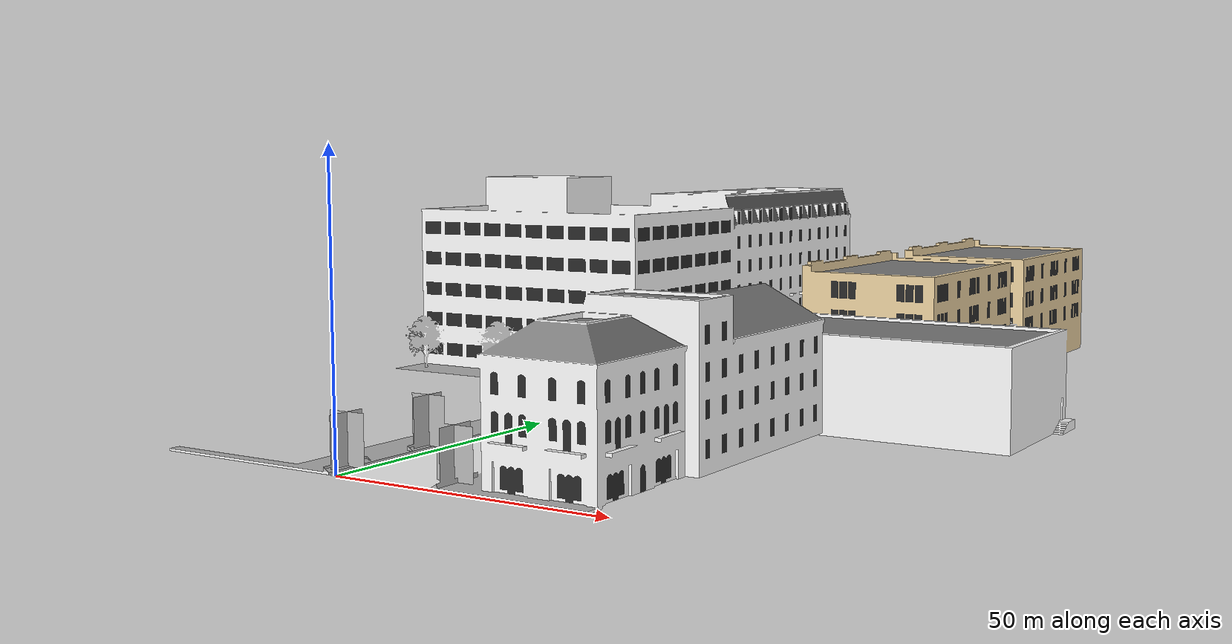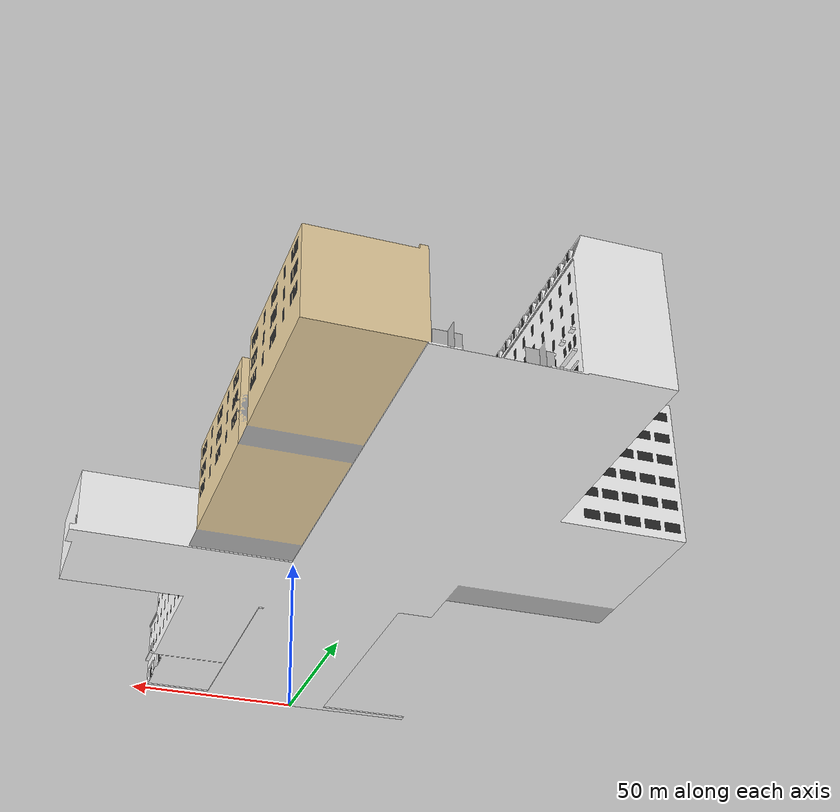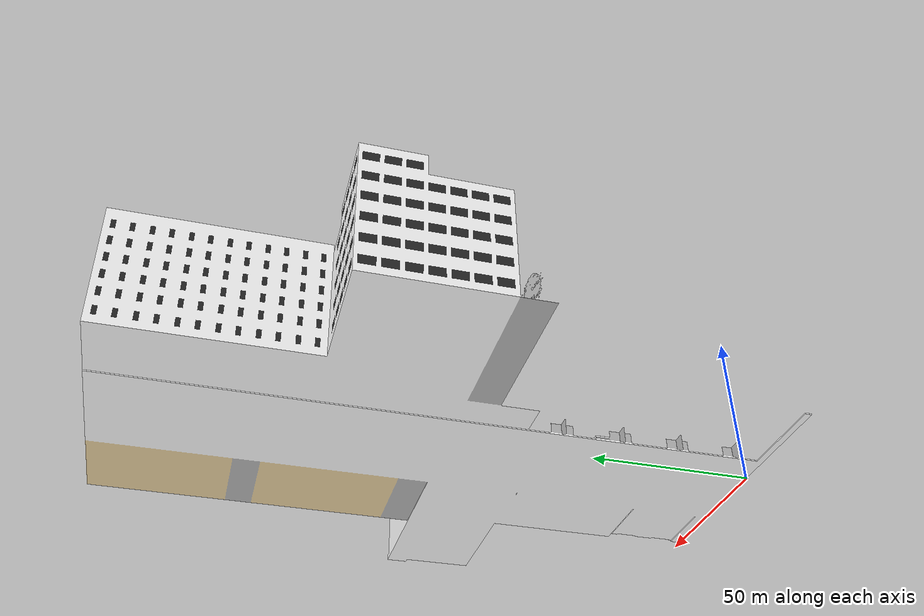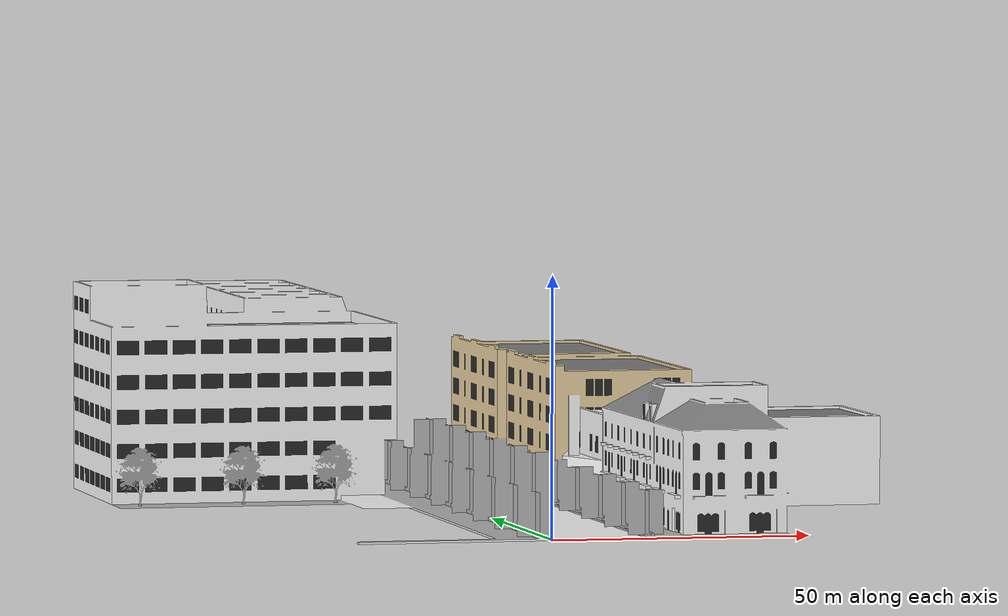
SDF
<?xml version='1.0'?>
<sdf version='1.7'>
  <model name='city1'>
	<static>true</static>
    <link name='link_0'>

		<collision name="collision">
		<geometry>
			<mesh>
				<uri>model://city1/mesh/model.dae</uri>
				<scale>1.85 1.85 1.85</scale>
			</mesh>
		</geometry>
		</collision>

		<visual name="visual">
		<cast_shadows>true</cast_shadows>
		<geometry>
			<mesh>
				<uri>model://city1/mesh/model.dae</uri>
				<scale>1.85 1.85 1.85</scale>
			</mesh>
		</geometry>
		</visual>
    </link>
  </model>
</sdf>
